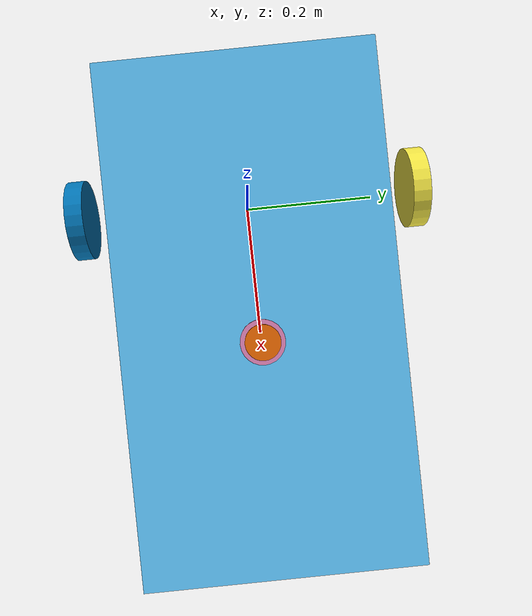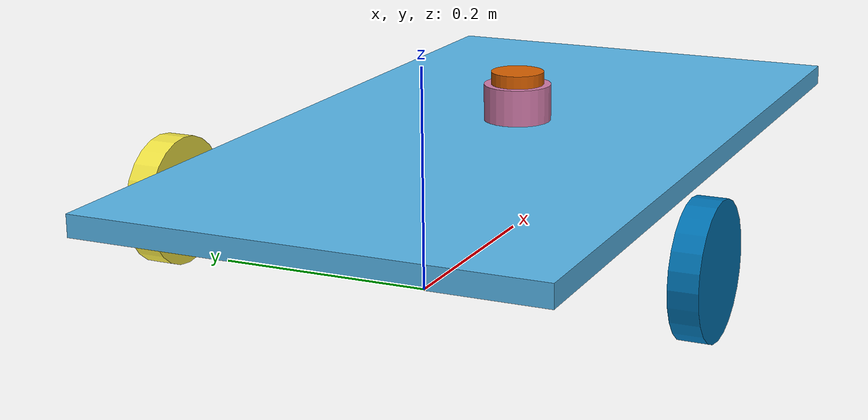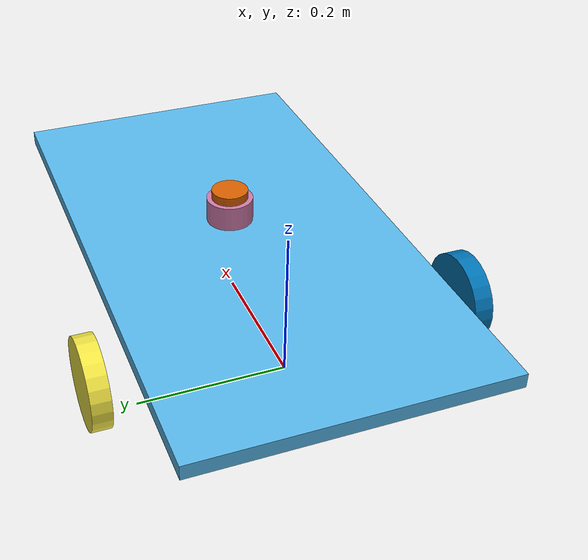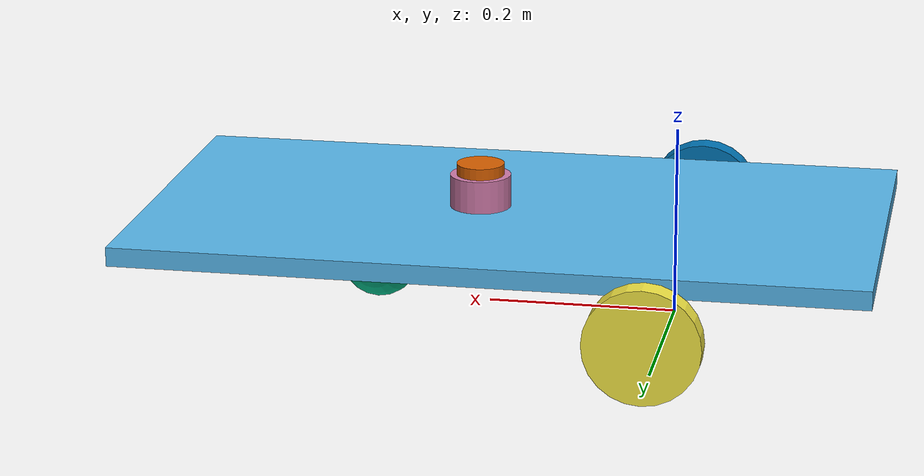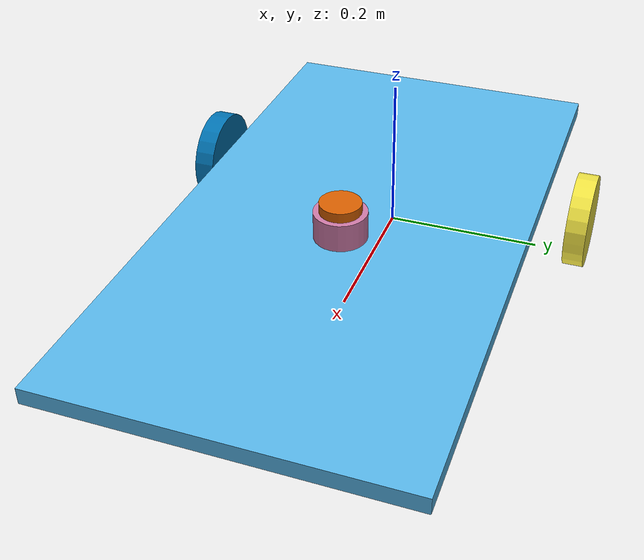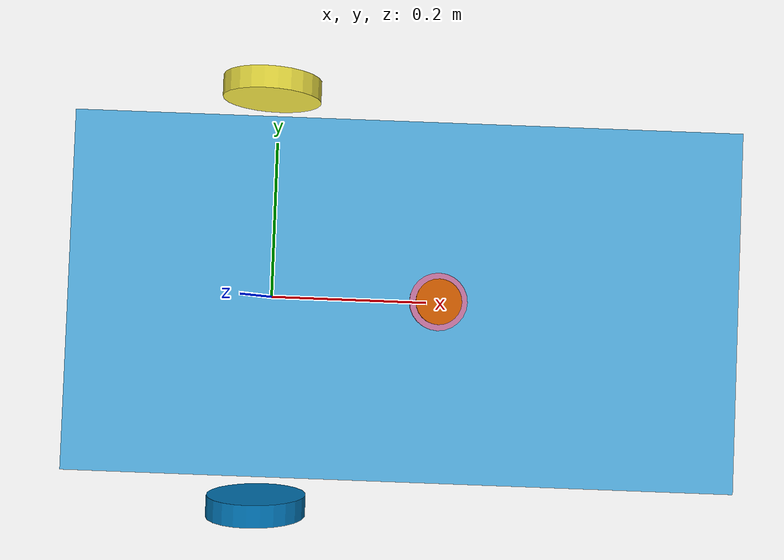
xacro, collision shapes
<?xml version='1.0'?>
<robot name="kana" xmlns:xacro="http://www.ros.org/wiki/xacro">

  <link name="base_link" />

  <link name="chassis">
    <collision name='chassis_collision'>
      <geometry>
        <box size=".78 .42 .02"/>
      </geometry>
    </collision>
    <visual name='chassis_visual'>
      <geometry>
        <box size=".78 .42 .02"/>
      </geometry>
      <material name="robot_base" />
    </visual>
    <inertial name="chassis_link_inertial">
      <mass value="10"/>
      <inertia ixx="0.1337" ixy="0.0" ixz="0.0" iyy="0.1473" iyz="0.0" izz="0.2803" />
    </inertial>
  </link>

  <joint name="chassis_joint" type="fixed">
    <parent link="base_link"/>
    <child link="chassis"/>
    <origin xyz="0.17 0 0.096" rpy="0 0 0"/>
  </joint>

  <link name="front_wheel">
    <collision name='front_wheel_collision'>
      <geometry>
        <sphere radius="0.043"/>
      </geometry>
    </collision>
    <visual name='front_wheel_visual'>
      <geometry>
        <sphere radius="0.043"/>
      </geometry>
    </visual>
    <inertial name="front_wheel_inertial">
      <mass value="0.3"/>
      <inertia ixx="0.00037" ixy="0.0" ixz="0.0" iyy="0.00037" iyz="0.0" izz="0.00037"/>
    </inertial>
  </link>

  <joint name="front_wheel_joint" type="fixed">
    <parent link="chassis"/>
    <child link="front_wheel"/>
    <origin xyz="0.15 0 -0.053" rpy="1.57 0.0 3.14"/>
    <axis xyz="1 1 1"/>
  </joint>

  <link name="rear_left_wheel">
    <collision name='rear_left_wheel_collision'>
      <geometry>
        <cylinder radius="0.06" length="0.026"/>
      </geometry>
    </collision>
    <visual name='rear_left_wheel_visual'>
      <geometry>
        <cylinder radius="0.06" length="0.026"/>
      </geometry>
      <material name="robot_wheel" />
    </visual>
    <inertial name="rear_left_wheel_inertial">
      <mass value="0.24"/>
      <inertia ixx="0.00016" ixy="0.0" ixz="0.0" iyy="0.00016" iyz="0.0" izz="0.0003"/>
    </inertial>
  </link>

  <joint name="rear_left_wheel_joint" type="fixed">
    <parent link="chassis"/>
    <child link="rear_left_wheel"/>
    <origin xyz="-0.17 0.255 -0.043" rpy="1.5708 0.0 3.1416"/>
    <axis xyz="0 0 1"/>
  </joint>

  <link name="rear_right_wheel">
    <collision name='rear_right_wheel_collision'>
      <geometry>
        <cylinder radius="0.06" length="0.026"/>
      </geometry>
    </collision>
    <visual name='rear_right_wheel_visual'>
      <geometry>
        <cylinder radius="0.06" length="0.026"/>
      </geometry>
      <material name="robot_wheel" />
    </visual>
    <inertial name="rear_right_wheel_inertial">
      <mass value="0.24"/>
      <inertia ixx="0.00016" ixy="0.0" ixz="0.0" iyy="0.00016" iyz="0.0" izz="0.0003"/>
    </inertial>
  </link>

  <joint name="rear_right_wheel_joint" type="fixed">
    <parent link="chassis"/>
    <child link="rear_right_wheel"/>
    <origin xyz="-0.17 -0.255 -0.043" rpy="1.5708 0.0 3.1416"/>
    <axis xyz="0 0 1"/>
  </joint>

  <link name="laser">
      <inertial name="lidar_base_inertial">
          <mass value="0.110" />
          <inertia ixx="0.000022901" ixy="0" ixz="0" iyy="0.000022901" iyz="0" izz="0.000035764" />
      </inertial>
      <collision name="lidar_base_collision">
          <geometry>
              <cylinder radius="0.0255" length="0.0243" />
          </geometry>
      </collision>
      <visual name="lidar_base_visual">
          <geometry>
              <mesh filename="package://kana_robot/robot_models/meshes/rplidar/scanse_bottom.dae" />
          </geometry>
          <material name="lidar_base" />
      </visual>
  </link>

  <joint name="laser_joint" type="fixed">
      <origin xyz="0.04 0 0.045" rpy="0 0 0"/>
      <parent link="chassis" />
      <child link="laser" />
  </joint>

  <link name="lidar_top">
      <inertial name="lidar_top_inertial">
          <mass value="0.010" />
          <inertia ixx="0.000011798" ixy="0" ixz="0" iyy="0.000011798" iyz="0" izz="0.000021125" />
      </inertial>
      <collision name="lidar_top_collision">
          <geometry>
              <cylinder radius="0.0325" length="0.0385" />
          </geometry>
      </collision>
      <visual name="lidar_top_visual">
          <geometry>
              <mesh filename="package://kana_robot/robot_models/meshes/rplidar/scanse_top.dae" />
          </geometry>
          <material name="lidar_top" />
      </visual>
  </link>

  <joint name="lidar_internal_joint" type="fixed">
    <parent link="laser" />
    <child link="lidar_top" />
    <origin xyz="0 0 -0.01925" rpy="0 0 0"/>
  </joint>

</robot>
